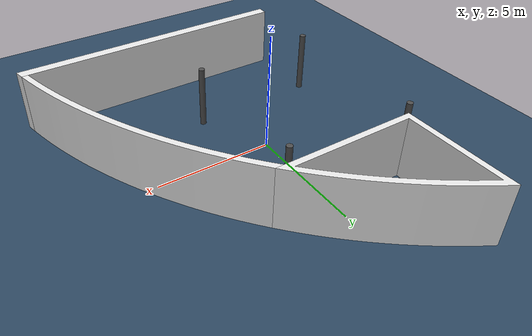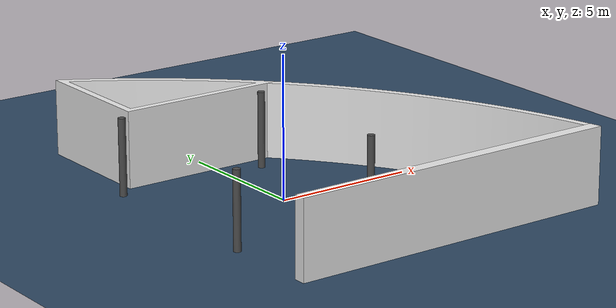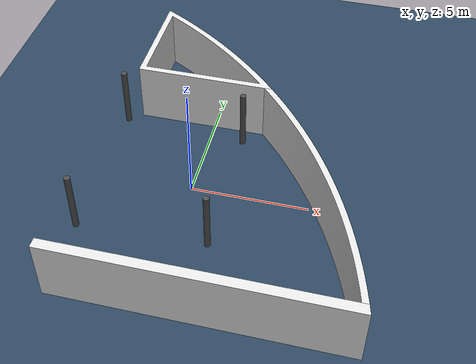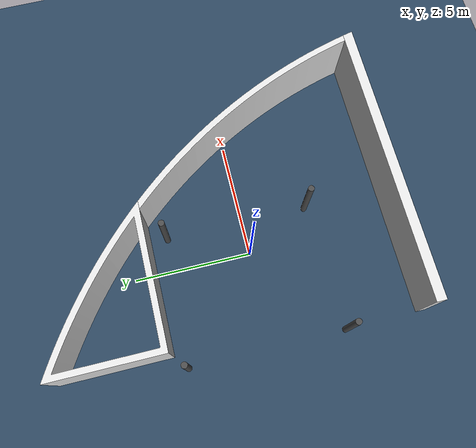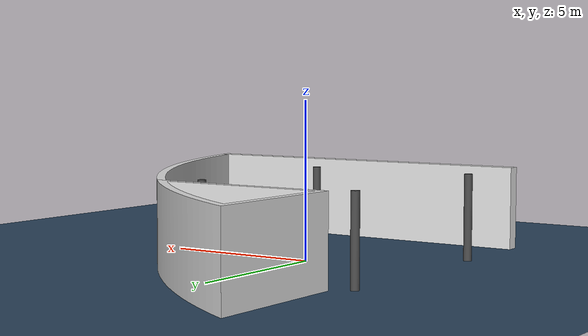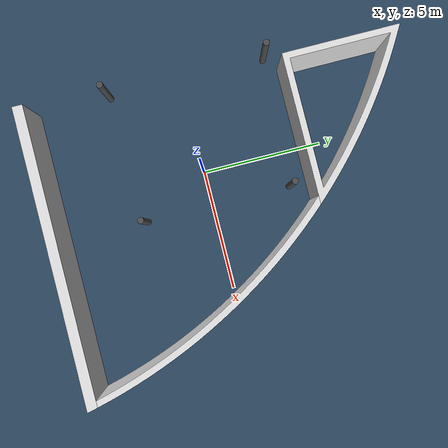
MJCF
<mujoco model="Lagyi">

  <include file="common_assets.xml" />

  <default class="main">
    <!--
    rotate by 90 degrees about the vertical axis
    to match the optitrack coordinate system
    -->

    <default class="lagyi">
      <geom quat="0 0 0.7071 0.7071" rgba="0.9 0.9 0.9 1"/>
    </default>

    <default class="pole">
      <geom rgba="0.1 0.1 0.1 1"/>
      <default class="pole_top">
        <geom type="cylinder" size="0.022 0.5" pos="0 0 0.5"/>
      </default>
      <default class="pole_bottom1">
        <geom type="box" size="0.02 0.205 0.02" quat="0.7071 0 0 0.7071" pos="0 0 0.02"/>
        <default class="pole_bottom2">
          <geom quat="1 0 0 0"/>
        </default>
      </default>
    </default>

    <default class="landing_zone">
      <geom type="box" pos="0 0 0.01" size="0.1175 0.0975 0.01" rgba="0.8 0.8 0.8 1.0"/>
    </default>
  </default>

  <compiler angle="radian" meshdir=""/>
  <option timestep="0.001" integrator="implicitfast"/>
  <visual>
    <quality shadowsize="4096"/>
    <global offwidth = "1920" offheight = "1200"/>
  </visual>

  <asset>
    <mesh file="meshes/crazyflie/cf2_assembly.stl" name="crazyflie" smoothnormal="true" scale="1.5 1.5 1.5"/>
    <mesh file="meshes/building/lagyi_cockpit.stl" name="cockpit" smoothnormal="true" scale="0.0085 0.0085 0.0085"/>
    <mesh file="meshes/building/lagyi_fal1.stl" name="fal1" smoothnormal="true" scale="0.0085 0.0085 0.0085"/>
    <mesh file="meshes/building/lagyi_fal2.stl" name="fal2" smoothnormal="true" scale="0.0085 0.0085 0.0085"/>
    <mesh file="meshes/building/lagyi_oszlop1.stl" name="oszlop1" smoothnormal="true" scale="0.0085 0.0085 0.0085"/>
    <mesh file="meshes/building/lagyi_oszlop2.stl" name="oszlop2" smoothnormal="true" scale="0.0085 0.0085 0.0085"/>
    <mesh file="meshes/building/lagyi_oszlop3.stl" name="oszlop3" smoothnormal="true" scale="0.0085 0.0085 0.0085"/>
    <mesh file="meshes/building/lagyi_oszlop4.stl" name="oszlop4" smoothnormal="true" scale="0.0085 0.0085 0.0085"/>

    <mesh file="meshes/bucket/Bucket3.obj" name="bucket" smoothnormal="false" scale="0.035 0.035 0.035"/>

    <texture type="skybox" builtin="gradient" rgb1=".3 .5 .7" rgb2="0 0 0" width="512" height="512"/>
    <texture name="tex-carpet" type="2d" file="textures/carpet_lagyi4.png"/>
    <texture name="tex-roundabout" type="2d" file="textures/roundabout.png"/>
    <texture name="tex-hospital" type="2d" file="textures/hospital.png"/>
    <texture name="tex-post_office" type="2d" file="textures/post_office.png"/>
    <texture name="tex-airport" type="2d" file="textures/airport.png"/>
    <texture name="tex-parking_lot" type="2d" file="textures/parking_lot.png"/>
    <texture name="tex-sztaki" type="2d" file="textures/sztaki.png"/>
    <material name="mat-carpet" shininess="0.1" texture="tex-carpet" texuniform="false"/>
    <material name="mat-roundabout" reflectance="0.7" texture="tex-roundabout" texuniform="false"/>
    <material name="mat-hospital" reflectance="0.7" texrepeat="7.843 7.692" texture="tex-hospital" texuniform="true"/>
    <material name="mat-post_office" reflectance="0.7" texrepeat="7.843 7.843" texture="tex-post_office" texuniform="true"/>
    <material name="mat-airport" reflectance="0.7" texrepeat="9.524 9.524" texture="tex-airport" texuniform="true"/>
    <material name="mat-parking_lot" reflectance="0.7" texrepeat="9.524 8.696" texture="tex-parking_lot" texuniform="true"/>
    <material name="mat-sztaki" reflectance="0.7" texrepeat="9.524 9.524" texture="tex-sztaki" texuniform="true"/>

    <texture name="grid" type="2d" builtin="checker" width="100" height="100" rgb1=".1 .2 .3" rgb2=".25 .35 .45"/>
    <material name="grid" texture="grid" texrepeat="1 1" texuniform="true" reflectance=".05"/>

  </asset>

  <worldbody>
    <camera pos="2.867 -5.173 1.776" xyaxes="0.875 0.485 0.000 -0.139 0.252 0.958"/>

    <light dir="0 -0.3 -1" diffuse=".9 .9 .9" specular="0.6 0.9 0.6" pos="1 1 15" cutoff="70"/>
    <light dir="-.2 1 -.4" diffuse=".9 .9 .9" specular="0.6 0.9 0.6" pos="2 -5 6" cutoff="70"/>
    <light dir="-1.0 -1.0 -.4" diffuse=".9 .9 .9" specular="0.6 0.9 0.6" pos="10 10 6" directional="true" cutoff="70"/>

    <geom size="20 20 .0005" pos = "0 0 -0.00025" type="plane" material="grid" condim="3"/>
    <geom name="carpet" size="7.644 7.644 .0005" pos="3.16 1.115 0.00025" quat="0.7071 0 0 0.7071" type="plane" material="mat-carpet"/>
    <geom name="roundabout" size="1.5 1.5 .0005" pos="0 0 0.00075" quat="1 0 0 0" type="plane" material="mat-roundabout" condim="3"/>
    <geom name="ground" size="20 20 .0050"  pos = "0 0 0.00125" type="plane" material="grid" condim="3" rgba="0 1 0 0"/>

    <body name="lagyi" pos="1.45 -2.8 0" childclass="lagyi">
      <geom name="cockpit" type="mesh" mesh="cockpit"/>
      <geom name="fal1" type="mesh" mesh="fal1"/>
      <geom name="fal2" type="mesh" mesh="fal2"/>
      <geom name="oszlop1" type="mesh" mesh="oszlop1" rgba="0.3 0.3 0.3 1"/>
      <geom name="oszlop2" type="mesh" mesh="oszlop2" rgba="0.3 0.3 0.3 1"/>
      <geom name="oszlop3" type="mesh" mesh="oszlop3" rgba="0.3 0.3 0.3 1"/>
      <geom name="oszlop4" type="mesh" mesh="oszlop4" rgba="0.3 0.3 0.3 1"/>
    </body>

  </worldbody>
  <actuator/>
  <sensor/>

</mujoco>

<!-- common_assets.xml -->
<mujoco>
  <asset>
    <mesh file="meshes/payload/payload_simplified.stl" name="payload_simplified" smoothnormal="false" scale="0.00115 0.00115 0.00115"/>

    <mesh file="meshes/crazyflie/cf_body.stl" name="crazyflie_body" smoothnormal="true" scale="1.0452 1.0452 1.0452"/>
    <mesh file="meshes/crazyflie/4_motormounts.stl" name="crazyflie_4_motormounts" smoothnormal="true" scale="1.0452 1.0452 1.0452"/>
    <mesh file="meshes/crazyflie/4_motors.stl" name="crazyflie_4_motors" smoothnormal="true" scale="1.0452 1.0452 1.0452"/>
    <mesh file="meshes/crazyflie/ccw_prop.stl" name="crazyflie_ccw_prop" smoothnormal="true" scale="1.0452 1.0452 1.0452"/>
    <mesh file="meshes/crazyflie/cw_prop.stl" name="crazyflie_cw_prop" smoothnormal="true" scale="1.0452 1.0452 1.0452"/>

    <mesh file="meshes/bumblebee/quad_model_no_prop_simplified.stl" name="bumblebee_body" smoothnormal="true" scale="0.001 0.001 0.001"/>
    <mesh file="meshes/bumblebee/ccw_propeller_simplified.stl" name="bumblebee_ccw_prop" smoothnormal="true" scale="0.001 0.001 0.001"/>
    <mesh file="meshes/bumblebee/cw_propeller_simplified.stl" name="bumblebee_cw_prop" smoothnormal="true" scale="0.001 0.001 0.001"/>

    <mesh file="meshes/airplane/WWII_plane.stl" name="airplane_mesh" smoothnormal="true" scale="1.0 1.0 1.0"/>

    <texture name="tex_check" builtin="checker" type="2d" width="256" height="256" rgb1=".8 .1 .1" rgb2=".1 .1 .8"/>
    <material name="material_check" texture="tex_check" texrepeat="2 2" texuniform="true"/>
  </asset>
</mujoco>
